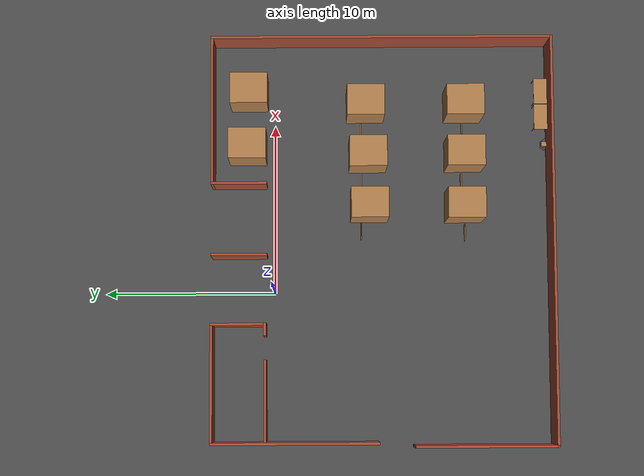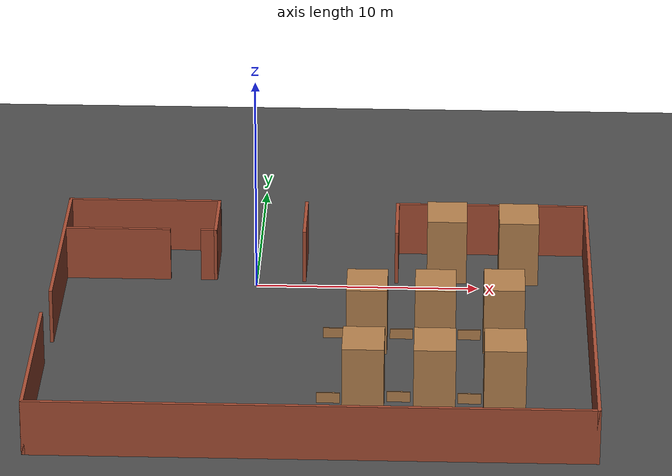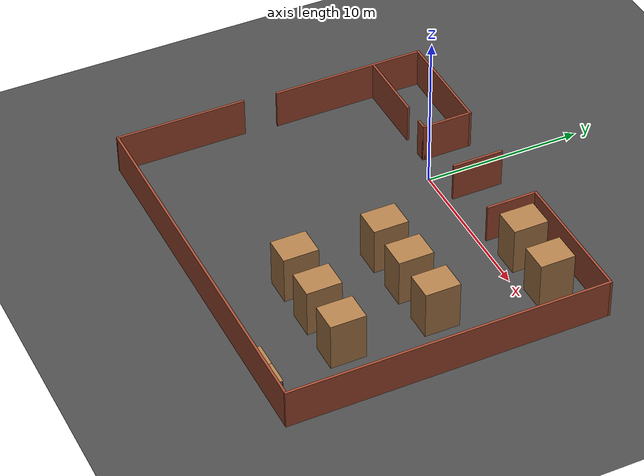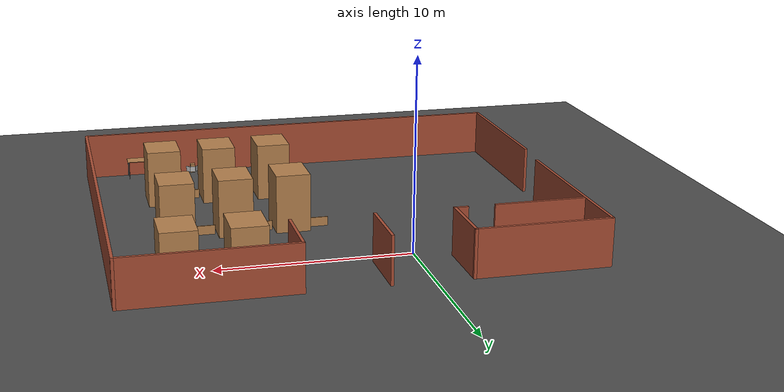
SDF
<sdf version="1.6">
 <world name="default">
  <model name="ground_plane">
   <static>1</static>
   <link name="link">
    <collision name="collision">
     <geometry><plane><normal>0 0 1</normal><size>100 100</size></plane></geometry>
     <surface><friction><ode><mu>100</mu><mu2>50</mu2></ode></friction></surface>
    </collision>
    <visual name="visual">
     <cast_shadows>0</cast_shadows>
     <geometry><plane><normal>0 0 1</normal><size>100 100</size></plane></geometry>
     <material>
      <script><uri>file://media/materials/scripts/gazebo.material</uri><name>Gazebo/DarkGrey</name></script>
     </material>
    </visual>
   </link>
  </model>
  <model name="enviroment_1">
   <pose>2.98612 -6.2457 0 0 -0 0</pose>
   <link name="Wall_0">
    <collision name="Wall_0_Collision">
     <geometry><box><size>8.25 0.15 2.5</size></box></geometry>
     <pose>0 0 1.25 0 -0 0</pose>
    </collision>
    <visual name="Wall_0_Visual">
     <pose>0 0 1.25 0 -0 0</pose>
     <geometry><box><size>8.25 0.15 2.5</size></box></geometry>
     <material>
      <script><uri>file://media/materials/scripts/gazebo.material</uri><name>Gazebo/Bricks</name></script>
      <ambient>1 1 1 1</ambient>
     </material>
     <meta><layer>0</layer></meta>
    </visual>
    <pose>-11.925 -5.8997 0 0 -0 -1.5708</pose>
   </link>
   <link name="Wall_1">
    <collision name="Wall_1_Collision">
     <geometry><box><size>24 0.15 2.5</size></box></geometry>
     <pose>0 0 1.25 0 -0 0</pose>
    </collision>
    <visual name="Wall_1_Visual">
     <pose>0 0 1.25 0 -0 0</pose>
     <geometry><box><size>24 0.15 2.5</size></box></geometry>
     <material>
      <script><uri>file://media/materials/scripts/gazebo.material</uri><name>Gazebo/Bricks</name></script>
      <ambient>1 1 1 1</ambient>
     </material>
     <meta><layer>0</layer></meta>
    </visual>
    <pose>0 -9.9497 0 0 -0 0</pose>
   </link>
   <link name="Wall_11">
    <collision name="Wall_11_Collision">
     <geometry><box><size>3.25 0.15 2.5</size></box></geometry>
     <pose>0 0 1.25 0 -0 0</pose>
    </collision>
    <visual name="Wall_11_Visual">
     <pose>0 0 1.25 0 -0 0</pose>
     <geometry><box><size>3.25 0.15 2.5</size></box></geometry>
     <material>
      <script><uri>file://media/materials/scripts/gazebo.material</uri><name>Gazebo/Bricks</name></script>
      <ambient>1 1 1 1</ambient>
     </material>
     <meta><layer>0</layer></meta>
    </visual>
    <pose>-0.85303 8.33887 0 0 -0 1.5708</pose>
   </link>
   <link name="Wall_13">
    <collision name="Wall_13_Collision">
     <geometry><box><size>4.75 0.15 2.5</size></box></geometry>
     <pose>0 0 1.25 0 -0 0</pose>
    </collision>
    <visual name="Wall_13_Visual">
     <pose>0 0 1.25 0 -0 0</pose>
     <geometry><box><size>4.75 0.15 2.5</size></box></geometry>
     <material>
      <script><uri>file://media/materials/scripts/gazebo.material</uri><name>Gazebo/Bricks</name></script>
      <ambient>1 1 1 1</ambient>
     </material>
     <meta><layer>0</layer></meta>
    </visual>
    <pose>-9.29736 6.8497 0 0 -0 3.14159</pose>
   </link>
   <link name="Wall_2">
    <collision name="Wall_2_Collision">
     <geometry><box><size>20 0.15 2.5</size></box></geometry>
     <pose>0 0 1.25 0 -0 0</pose>
    </collision>
    <visual name="Wall_2_Visual">
     <pose>0 0 1.25 0 -0 0</pose>
     <geometry><box><size>20 0.15 2.5</size></box></geometry>
     <material>
      <script><uri>file://media/materials/scripts/gazebo.material</uri><name>Gazebo/Bricks</name></script>
      <ambient>1 1 1 1</ambient>
     </material>
     <meta><layer>0</layer></meta>
    </visual>
    <pose>11.925 -0.024702 0 0 -0 1.5708</pose>
   </link>
   <link name="Wall_3">
    <collision name="Wall_3_Collision">
     <geometry><box><size>8.75 0.15 2.5</size></box></geometry>
     <pose>0 0 1.25 0 -0 0</pose>
    </collision>
    <visual name="Wall_3_Visual">
     <pose>0 0 1.25 0 -0 0</pose>
     <geometry><box><size>8.75 0.15 2.5</size></box></geometry>
     <material>
      <script><uri>file://media/materials/scripts/gazebo.material</uri><name>Gazebo/Bricks</name></script>
      <ambient>1 1 1 1</ambient>
     </material>
     <meta><layer>0</layer></meta>
    </visual>
    <pose>7.625 9.9003 0 0 -0 3.14159</pose>
   </link>
   <link name="Wall_4">
    <collision name="Wall_4_Collision">
     <geometry><box><size>3.25 0.15 2.5</size></box></geometry>
     <pose>0 0 1.25 0 -0 0</pose>
    </collision>
    <visual name="Wall_4_Visual">
     <pose>0 0 1.25 0 -0 0</pose>
     <geometry><box><size>3.25 0.15 2.5</size></box></geometry>
     <material>
      <script><uri>file://media/materials/scripts/gazebo.material</uri><name>Gazebo/Bricks</name></script>
      <ambient>1 1 1 1</ambient>
     </material>
     <meta><layer>0</layer></meta>
    </visual>
    <pose>3.325 8.3503 0 0 -0 -1.5708</pose>
   </link>
   <link name="Wall_6">
    <collision name="Wall_6_Collision">
     <geometry><box><size>0.75 0.15 2.5</size></box></geometry>
     <pose>0 0 1.25 0 -0 0</pose>
    </collision>
    <visual name="Wall_6_Visual">
     <pose>0 0 1.25 0 -0 0</pose>
     <geometry><box><size>0.75 0.15 2.5</size></box></geometry>
     <material>
      <script><uri>file://media/materials/scripts/gazebo.material</uri><name>Gazebo/Bricks</name></script>
      <ambient>1 1 1 1</ambient>
     </material>
     <meta><layer>0</layer></meta>
    </visual>
    <pose>-5.17649 6.8497 0 0 -0 0</pose>
   </link>
   <link name="Wall_7">
    <collision name="Wall_7_Collision">
     <geometry><box><size>3.25 0.15 2.5</size></box></geometry>
     <pose>0 0 1.25 0 -0 0</pose>
    </collision>
    <visual name="Wall_7_Visual">
     <pose>0 0 1.25 0 -0 0</pose>
     <geometry><box><size>3.25 0.15 2.5</size></box></geometry>
     <material>
      <script><uri>file://media/materials/scripts/gazebo.material</uri><name>Gazebo/Bricks</name></script>
      <ambient>1 1 1 1</ambient>
     </material>
     <meta><layer>0</layer></meta>
    </visual>
    <pose>-4.87649 8.3997 0 0 -0 1.5708</pose>
   </link>
   <link name="Wall_8">
    <collision name="Wall_8_Collision">
     <geometry><box><size>7 0.15 2.5</size></box></geometry>
     <pose>0 0 1.25 0 -0 0</pose>
    </collision>
    <visual name="Wall_8_Visual">
     <pose>0 0 1.25 0 -0 0</pose>
     <geometry><box><size>7 0.15 2.5</size></box></geometry>
     <material>
      <script><uri>file://media/materials/scripts/gazebo.material</uri><name>Gazebo/Bricks</name></script>
      <ambient>1 1 1 1</ambient>
     </material>
     <meta><layer>0</layer></meta>
    </visual>
    <pose>-8.30149 9.9497 0 0 -0 3.14159</pose>
   </link>
   <link name="Wall_9">
    <collision name="Wall_9_Collision">
     <geometry><box><size>9.75 0.15 2.5</size></box></geometry>
     <pose>0 0 1.25 0 -0 0</pose>
    </collision>
    <visual name="Wall_9_Visual">
     <pose>0 0 1.25 0 -0 0</pose>
     <geometry><box><size>9.75 0.15 2.5</size></box></geometry>
     <material>
      <script><uri>file://media/materials/scripts/gazebo.material</uri><name>Gazebo/Bricks</name></script>
      <ambient>1 1 1 1</ambient>
     </material>
     <meta><layer>0</layer></meta>
    </visual>
    <pose>-11.7265 5.1497 0 0 -0 -1.5708</pose>
   </link>
   <static>1</static>
  </model>
  <model name="unit_box_clone_1">
   <pose>5.11301 -5.51097 1.53205 1e-06 -0 0.000162</pose>
   <link name="link">
    <inertial>
     <mass>1</mass>
     <inertia>
      <ixx>0.166667</ixx>
      <ixy>0</ixy>
      <ixz>0</ixz>
      <iyy>0.166667</iyy>
      <iyz>0</iyz>
      <izz>0.166667</izz>
     </inertia>
    </inertial>
    <collision name="collision"><geometry><box><size>1.78607 2.17889 3.06409</size></box></geometry></collision>
    <visual name="visual">
     <geometry><box><size>1.78607 2.17889 3.06409</size></box></geometry>
     <material>
      <script><name>Gazebo/Wood</name><uri>file://media/materials/scripts/gazebo.material</uri></script>
     </material>
    </visual>
   </link>
  </model>
  <model name="unit_box_clone_2">
   <pose>8.1033 -5.43309 1.53204 2e-06 -0 0.000123</pose>
   <link name="link">
    <inertial>
     <mass>1</mass>
     <inertia>
      <ixx>0.166667</ixx>
      <ixy>0</ixy>
      <ixz>0</ixz>
      <iyy>0.166667</iyy>
      <iyz>0</iyz>
      <izz>0.166667</izz>
     </inertia>
    </inertial>
    <collision name="collision"><geometry><box><size>1.78607 2.17889 3.06409</size></box></geometry></collision>
    <visual name="visual">
     <geometry><box><size>1.78607 2.17889 3.06409</size></box></geometry>
     <material>
      <script><name>Gazebo/Wood</name><uri>file://media/materials/scripts/gazebo.material</uri></script>
     </material>
    </visual>
   </link>
  </model>
  <model name="unit_box_clone_3">
   <pose>11.1034 -5.30341 1.53205 -1e-06 -0 0.00014</pose>
   <link name="link">
    <inertial>
     <mass>1</mass>
     <inertia>
      <ixx>0.166667</ixx>
      <ixy>0</ixy>
      <ixz>0</ixz>
      <iyy>0.166667</iyy>
      <iyz>0</iyz>
      <izz>0.166667</izz>
     </inertia>
    </inertial>
    <collision name="collision"><geometry><box><size>1.78607 2.17889 3.06409</size></box></geometry></collision>
    <visual name="visual">
     <geometry><box><size>1.78607 2.17889 3.06409</size></box></geometry>
     <material>
      <script><name>Gazebo/Wood</name><uri>file://media/materials/scripts/gazebo.material</uri></script>
     </material>
    </visual>
   </link>
  </model>
  <model name="unit_box_clone_4">
   <pose>8.58374 1.61175 1.53205 1e-06 0 0.000115</pose>
   <link name="link">
    <inertial>
     <mass>1</mass>
     <inertia>
      <ixx>0.166667</ixx>
      <ixy>0</ixy>
      <ixz>0</ixz>
      <iyy>0.166667</iyy>
      <iyz>0</iyz>
      <izz>0.166667</izz>
     </inertia>
    </inertial>
    <collision name="collision"><geometry><box><size>1.78607 2.17889 3.06409</size></box></geometry></collision>
    <visual name="visual">
     <geometry><box><size>1.78607 2.17889 3.06409</size></box></geometry>
     <material>
      <script><name>Gazebo/Wood</name><uri>file://media/materials/scripts/gazebo.material</uri></script>
     </material>
    </visual>
   </link>
  </model>
  <model name="unit_box_clone_5">
   <pose>11.8267 1.51636 1.53205 -1e-06 0 0.000151</pose>
   <link name="link">
    <inertial>
     <mass>1</mass>
     <inertia>
      <ixx>0.166667</ixx>
      <ixy>0</ixy>
      <ixz>0</ixz>
      <iyy>0.166667</iyy>
      <iyz>0</iyz>
      <izz>0.166667</izz>
     </inertia>
    </inertial>
    <collision name="collision"><geometry><box><size>1.78607 2.17889 3.06409</size></box></geometry></collision>
    <visual name="visual">
     <geometry><box><size>1.78607 2.17889 3.06409</size></box></geometry>
     <material>
      <script><name>Gazebo/Wood</name><uri>file://media/materials/scripts/gazebo.material</uri></script>
     </material>
    </visual>
   </link>
  </model>
  <model name="unit_box_clone_9">
   <pose>5.07629 -11.1138 1.53204 2e-06 -0 8.1e-05</pose>
   <link name="link">
    <inertial>
     <mass>1</mass>
     <inertia>
      <ixx>0.166667</ixx>
      <ixy>0</ixy>
      <ixz>0</ixz>
      <iyy>0.166667</iyy>
      <iyz>0</iyz>
      <izz>0.166667</izz>
     </inertia>
    </inertial>
    <collision name="collision"><geometry><box><size>1.78607 2.17889 3.06409</size></box></geometry></collision>
    <visual name="visual">
     <geometry><box><size>1.78607 2.17889 3.06409</size></box></geometry>
     <material>
      <script><name>Gazebo/Wood</name><uri>file://media/materials/scripts/gazebo.material</uri></script>
     </material>
    </visual>
   </link>
  </model>
  <model name="unit_box_clone_10">
   <pose>8.1123 -11.1173 1.53204 2e-06 -0 0.000136</pose>
   <link name="link">
    <inertial>
     <mass>1</mass>
     <inertia>
      <ixx>0.166667</ixx>
      <ixy>0</ixy>
      <ixz>0</ixz>
      <iyy>0.166667</iyy>
      <iyz>0</iyz>
      <izz>0.166667</izz>
     </inertia>
    </inertial>
    <collision name="collision"><geometry><box><size>1.78607 2.17889 3.06409</size></box></geometry></collision>
    <visual name="visual">
     <geometry><box><size>1.78607 2.17889 3.06409</size></box></geometry>
     <material>
      <script><name>Gazebo/Wood</name><uri>file://media/materials/scripts/gazebo.material</uri></script>
     </material>
    </visual>
   </link>
  </model>
  <model name="unit_box_clone_11">
   <pose>11.0953 -11.093 1.53205 -1e-06 0 0.000112</pose>
   <link name="link">
    <inertial>
     <mass>1</mass>
     <inertia>
      <ixx>0.166667</ixx>
      <ixy>0</ixy>
      <ixz>0</ixz>
      <iyy>0.166667</iyy>
      <iyz>0</iyz>
      <izz>0.166667</izz>
     </inertia>
    </inertial>
    <collision name="collision"><geometry><box><size>1.78607 2.17889 3.06409</size></box></geometry></collision>
    <visual name="visual">
     <geometry><box><size>1.78607 2.17889 3.06409</size></box></geometry>
     <material>
      <script><name>Gazebo/Wood</name><uri>file://media/materials/scripts/gazebo.material</uri></script>
     </material>
    </visual>
   </link>
  </model>
  <model name="table">
   <static>1</static>
   <link name="link">
    <collision name="surface">
     <pose>0 0 1 0 -0 0</pose>
     <geometry><box><size>1.5 0.8 0.03</size></box></geometry>
     <surface><friction><ode><mu>0.6</mu><mu2>0.6</mu2></ode></friction></surface>
    </collision>
    <visual name="visual1">
     <pose>0 0 1 0 -0 0</pose>
     <geometry><box><size>1.5 0.8 0.03</size></box></geometry>
     <material>
      <script><uri>file://media/materials/scripts/gazebo.material</uri><name>Gazebo/Wood</name></script>
     </material>
    </visual>
    <collision name="front_left_leg">
     <pose>0.68 0.38 0.5 0 -0 0</pose>
     <geometry><cylinder><radius>0.02</radius><length>1</length></cylinder></geometry>
    </collision>
    <visual name="front_left_leg">
     <pose>0.68 0.38 0.5 0 -0 0</pose>
     <geometry><cylinder><radius>0.02</radius><length>1</length></cylinder></geometry>
     <material>
      <script><uri>file://media/materials/scripts/gazebo.material</uri><name>Gazebo/Grey</name></script>
     </material>
    </visual>
    <collision name="front_right_leg">
     <pose>0.68 -0.38 0.5 0 -0 0</pose>
     <geometry><cylinder><radius>0.02</radius><length>1</length></cylinder></geometry>
    </collision>
    <visual name="front_right_leg">
     <pose>0.68 -0.38 0.5 0 -0 0</pose>
     <geometry><cylinder><radius>0.02</radius><length>1</length></cylinder></geometry>
     <material>
      <script><uri>file://media/materials/scripts/gazebo.material</uri><name>Gazebo/Grey</name></script>
     </material>
    </visual>
    <collision name="back_right_leg">
     <pose>-0.68 -0.38 0.5 0 -0 0</pose>
     <geometry><cylinder><radius>0.02</radius><length>1</length></cylinder></geometry>
    </collision>
    <visual name="back_right_leg">
     <pose>-0.68 -0.38 0.5 0 -0 0</pose>
     <geometry><cylinder><radius>0.02</radius><length>1</length></cylinder></geometry>
     <material>
      <script><uri>file://media/materials/scripts/gazebo.material</uri><name>Gazebo/Grey</name></script>
     </material>
    </visual>
    <collision name="back_left_leg">
     <pose>-0.68 0.38 0.5 0 -0 0</pose>
     <geometry><cylinder><radius>0.02</radius><length>1</length></cylinder></geometry>
    </collision>
    <visual name="back_left_leg">
     <pose>-0.68 0.38 0.5 0 -0 0</pose>
     <geometry><cylinder><radius>0.02</radius><length>1</length></cylinder></geometry>
     <material>
      <script><uri>file://media/materials/scripts/gazebo.material</uri><name>Gazebo/Grey</name></script>
     </material>
    </visual>
   </link>
   <pose>10.3967 -15.7211 0 0 -0 0</pose>
  </model>
  <model name="table_0">
   <static>1</static>
   <link name="link">
    <collision name="surface">
     <pose>0 0 1 0 -0 0</pose>
     <geometry><box><size>1.5 0.8 0.03</size></box></geometry>
     <surface><friction><ode><mu>0.6</mu><mu2>0.6</mu2></ode></friction></surface>
    </collision>
    <visual name="visual1">
     <pose>0 0 1 0 -0 0</pose>
     <geometry><box><size>1.5 0.8 0.03</size></box></geometry>
     <material>
      <script><uri>file://media/materials/scripts/gazebo.material</uri><name>Gazebo/Wood</name></script>
     </material>
    </visual>
    <collision name="front_left_leg">
     <pose>0.68 0.38 0.5 0 -0 0</pose>
     <geometry><cylinder><radius>0.02</radius><length>1</length></cylinder></geometry>
    </collision>
    <visual name="front_left_leg">
     <pose>0.68 0.38 0.5 0 -0 0</pose>
     <geometry><cylinder><radius>0.02</radius><length>1</length></cylinder></geometry>
     <material>
      <script><uri>file://media/materials/scripts/gazebo.material</uri><name>Gazebo/Grey</name></script>
     </material>
    </visual>
    <collision name="front_right_leg">
     <pose>0.68 -0.38 0.5 0 -0 0</pose>
     <geometry><cylinder><radius>0.02</radius><length>1</length></cylinder></geometry>
    </collision>
    <visual name="front_right_leg">
     <pose>0.68 -0.38 0.5 0 -0 0</pose>
     <geometry><cylinder><radius>0.02</radius><length>1</length></cylinder></geometry>
     <material>
      <script><uri>file://media/materials/scripts/gazebo.material</uri><name>Gazebo/Grey</name></script>
     </material>
    </visual>
    <collision name="back_right_leg">
     <pose>-0.68 -0.38 0.5 0 -0 0</pose>
     <geometry><cylinder><radius>0.02</radius><length>1</length></cylinder></geometry>
    </collision>
    <visual name="back_right_leg">
     <pose>-0.68 -0.38 0.5 0 -0 0</pose>
     <geometry><cylinder><radius>0.02</radius><length>1</length></cylinder></geometry>
     <material>
      <script><uri>file://media/materials/scripts/gazebo.material</uri><name>Gazebo/Grey</name></script>
     </material>
    </visual>
    <collision name="back_left_leg">
     <pose>-0.68 0.38 0.5 0 -0 0</pose>
     <geometry><cylinder><radius>0.02</radius><length>1</length></cylinder></geometry>
    </collision>
    <visual name="back_left_leg">
     <pose>-0.68 0.38 0.5 0 -0 0</pose>
     <geometry><cylinder><radius>0.02</radius><length>1</length></cylinder></geometry>
     <material>
      <script><uri>file://media/materials/scripts/gazebo.material</uri><name>Gazebo/Grey</name></script>
     </material>
    </visual>
   </link>
   <pose>11.9134 -15.7244 0 0 -0 0</pose>
  </model>
  <model name="Support_box_wood_clone_clone">
   <link name="link">
    <inertial>
     <mass>0.0406949</mass>
     <inertia>
      <ixx>0.00114102</ixx>
      <ixy>0</ixy>
      <ixz>0</ixz>
      <iyy>0.00102768</iyy>
      <iyz>0</iyz>
      <izz>0.000581951</izz>
     </inertia>
    </inertial>
    <pose>0.062754 0.860403 -0.243846 0 -0 0</pose>
    <visual name="visual">
     <geometry><box><size>0.252854 0.320175 0.483682</size></box></geometry>
     <material>
      <script><name>Gazebo/Wood</name><uri>file://media/materials/scripts/gazebo.material</uri></script>
      <shader type="vertex"><normal_map>__default__</normal_map></shader>
      <ambient>0.3 0.3 0.3 1</ambient>
      <diffuse>0.7 0.7 0.7 1</diffuse>
      <specular>0.01 0.01 0.01 1</specular>
      <emissive>0 0 0 1</emissive>
     </material>
    </visual>
    <visual name="ModelPreview_4::link::visual_1">
     <geometry><box><size>0.252854 0.320175 0.483682</size></box></geometry>
     <material>
      <script><name>Gazebo/Wood</name><uri>file://media/materials/scripts/gazebo.material</uri></script>
      <shader type="vertex"><normal_map>__default__</normal_map></shader>
      <ambient>0.3 0.3 0.3 1</ambient>
      <diffuse>0.7 0.7 0.7 1</diffuse>
      <specular>0.01 0.01 0.01 1</specular>
      <emissive>0 0 0 1</emissive>
     </material>
    </visual>
    <collision name="collision">
     <geometry><box><size>0.262854 0.320175 0.483683</size></box></geometry>
     <surface>
      <friction>
       <ode><mu>1</mu><mu2>1</mu2><fdir1>0 0 0</fdir1><slip1>0</slip1><slip2>0</slip2></ode>
       <torsional>
        <coefficient>1</coefficient>
        <patch_radius>0</patch_radius>
        <surface_radius>0</surface_radius>
        <use_patch_radius>1</use_patch_radius>
        <ode><slip>0</slip></ode>
       </torsional>
      </friction>
      <bounce><restitution_coefficient>0</restitution_coefficient><threshold>1e+06</threshold></bounce>
      <contact>
       <collide_without_contact>0</collide_without_contact>
       <collide_without_contact_bitmask>1</collide_without_contact_bitmask>
       <collide_bitmask>1</collide_bitmask>
       <ode>
        <soft_cfm>0</soft_cfm>
        <soft_erp>0.2</soft_erp>
        <kp>1e+13</kp>
        <kd>1</kd>
        <max_vel>0.01</max_vel>
        <min_depth>0</min_depth>
       </ode>
       <bullet>
        <split_impulse>1</split_impulse>
        <split_impulse_penetration_threshold>-0.01</split_impulse_penetration_threshold>
        <soft_cfm>0</soft_cfm>
        <soft_erp>0.2</soft_erp>
        <kp>1e+13</kp>
        <kd>1</kd>
       </bullet>
      </contact>
     </surface>
    </collision>
   </link>
   <static>0</static>
   <pose>8.77795 -16.8207 0.485673 1.4e-05 -0 0.000104</pose>
  </model>
  <model name="Aruco tag102">
   <static>1</static>
   <link name="robot_link">
    <visual name="body_visual">
     <geometry><box><size>0.3 0.3 0.02</size></box></geometry>
     <material>
      <script><uri>model://tag_102/materials/scripts/tag.material</uri><name>aruco_tag_102</name></script>
     </material>
    </visual>
   </link>
   <pose>8.84643 -15.7937 0.2 1.57 -0 0</pose>
  </model>
  <model name="Aruco tag102_clone">
   <static>1</static>
   <link name="robot_link">
    <visual name="body_visual">
     <geometry><box><size>0.3 0.3 0.02</size></box></geometry>
     <material>
      <script><uri>model://tag_102/materials/scripts/tag.material</uri><name>aruco_tag_102</name></script>
     </material>
    </visual>
   </link>
   <pose>8.59529 -15.9151 0.2 1.57 -0 0.909999</pose>
  </model>
  <model name="Aruco tag102_clone_clone">
   <static>1</static>
   <link name="robot_link">
    <visual name="body_visual">
     <geometry><box><size>0.3 0.3 0.02</size></box></geometry>
     <material>
      <script><uri>model://tag_102/materials/scripts/tag.material</uri><name>aruco_tag_102</name></script>
     </material>
    </visual>
   </link>
   <pose>9.09641 -15.916 0.2 1.57 -0 -0.909999</pose>
  </model>
  <model name="fence">
   <link name="link">
    <inertial>
     <mass>0.0236206</mass>
     <inertia>
      <ixx>0.00046005</ixx>
      <ixy>0</ixy>
      <ixz>0</ixz>
      <iyy>0.00242368</iyy>
      <iyz>0</iyz>
      <izz>0.00197313</izz>
     </inertia>
    </inertial>
    <pose>0.164119 -0.397459 0.001761 0 -0 0</pose>
    <visual name="visual">
     <geometry><box><size>1 0.049108 0.480943</size></box></geometry>
     <material>
      <script><name>Gazebo/Wood</name><uri>file://media/materials/scripts/gazebo.material</uri></script>
      <shader type="pixel"><normal_map>__default__</normal_map></shader>
      <ambient>1 1 1 1</ambient>
      <diffuse>1 1 1 1</diffuse>
      <specular>0.2 0.2 0.2 1</specular>
      <emissive>0 0 0 1</emissive>
     </material>
    </visual>
    <collision name="collision">
     <geometry><box><size>1 0.049108 0.480943</size></box></geometry>
     <surface>
      <friction>
       <ode><mu>1</mu><mu2>1</mu2><fdir1>0 0 0</fdir1><slip1>0</slip1><slip2>0</slip2></ode>
       <torsional>
        <coefficient>1</coefficient>
        <patch_radius>0</patch_radius>
        <surface_radius>0</surface_radius>
        <use_patch_radius>1</use_patch_radius>
        <ode><slip>0</slip></ode>
       </torsional>
      </friction>
      <bounce><restitution_coefficient>0</restitution_coefficient><threshold>1e+06</threshold></bounce>
      <contact>
       <collide_without_contact>0</collide_without_contact>
       <collide_without_contact_bitmask>1</collide_without_contact_bitmask>
       <collide_bitmask>1</collide_bitmask>
       <ode>
        <soft_cfm>0</soft_cfm>
        <soft_erp>0.2</soft_erp>
        <kp>1e+13</kp>
        <kd>1</kd>
        <max_vel>0.01</max_vel>
        <min_depth>0</min_depth>
       </ode>
       <bullet>
        <split_impulse>1</split_impulse>
        <split_impulse_penetration_threshold>-0.01</split_impulse_penetration_threshold>
        <soft_cfm>0</soft_cfm>
        <soft_erp>0.2</soft_erp>
        <kp>1e+13</kp>
        <kd>1</kd>
       </bullet>
      </contact>
     </surface>
    </collision>
   </link>
   <static>0</static>
   <pose>9.44598 -10.6972 0.238705 1e-06 -9e-06 0.004586</pose>
  </model>
  <model name="fence_clone">
   <link name="link">
    <inertial>
     <mass>0.0236206</mass>
     <inertia>
      <ixx>0.00046005</ixx>
      <ixy>0</ixy>
      <ixz>0</ixz>
      <iyy>0.00242368</iyy>
      <iyz>0</iyz>
      <izz>0.00197313</izz>
     </inertia>
    </inertial>
    <pose>0.164119 -0.397459 0.001761 0 -0 0</pose>
    <visual name="visual">
     <geometry><box><size>1 0.049108 0.480943</size></box></geometry>
     <material>
      <script><name>Gazebo/Wood</name><uri>file://media/materials/scripts/gazebo.material</uri></script>
      <shader type="pixel"><normal_map>__default__</normal_map></shader>
      <ambient>1 1 1 1</ambient>
      <diffuse>1 1 1 1</diffuse>
      <specular>0.2 0.2 0.2 1</specular>
      <emissive>0 0 0 1</emissive>
     </material>
    </visual>
    <collision name="collision">
     <geometry><box><size>1 0.049108 0.480943</size></box></geometry>
     <surface>
      <friction>
       <ode><mu>1</mu><mu2>1</mu2><fdir1>0 0 0</fdir1><slip1>0</slip1><slip2>0</slip2></ode>
       <torsional>
        <coefficient>1</coefficient>
        <patch_radius>0</patch_radius>
        <surface_radius>0</surface_radius>
        <use_patch_radius>1</use_patch_radius>
        <ode><slip>0</slip></ode>
       </torsional>
      </friction>
      <bounce><restitution_coefficient>0</restitution_coefficient><threshold>1e+06</threshold></bounce>
      <contact>
       <collide_without_contact>0</collide_without_contact>
       <collide_without_contact_bitmask>1</collide_without_contact_bitmask>
       <collide_bitmask>1</collide_bitmask>
       <ode>
        <soft_cfm>0</soft_cfm>
        <soft_erp>0.2</soft_erp>
        <kp>1e+13</kp>
        <kd>1</kd>
        <max_vel>0.01</max_vel>
        <min_depth>0</min_depth>
       </ode>
       <bullet>
        <split_impulse>1</split_impulse>
        <split_impulse_penetration_threshold>-0.01</split_impulse_penetration_threshold>
        <soft_cfm>0</soft_cfm>
        <soft_erp>0.2</soft_erp>
        <kp>1e+13</kp>
        <kd>1</kd>
       </bullet>
      </contact>
     </surface>
    </collision>
   </link>
   <static>0</static>
   <pose>6.4229 -10.6127 0.238704 -1e-06 -9e-06 -0.003075</pose>
  </model>
  <model name="fence_clone_0">
   <link name="link">
    <inertial>
     <mass>0.0236206</mass>
     <inertia>
      <ixx>0.00046005</ixx>
      <ixy>0</ixy>
      <ixz>0</ixz>
      <iyy>0.00242368</iyy>
      <iyz>0</iyz>
      <izz>0.00197313</izz>
     </inertia>
    </inertial>
    <pose>0.164119 -0.397459 0.001761 0 -0 0</pose>
    <visual name="visual">
     <geometry><box><size>1 0.049108 0.480943</size></box></geometry>
     <material>
      <script><name>Gazebo/Wood</name><uri>file://media/materials/scripts/gazebo.material</uri></script>
      <shader type="pixel"><normal_map>__default__</normal_map></shader>
      <ambient>1 1 1 1</ambient>
      <diffuse>1 1 1 1</diffuse>
      <specular>0.2 0.2 0.2 1</specular>
      <emissive>0 0 0 1</emissive>
     </material>
    </visual>
    <collision name="collision">
     <geometry><box><size>1 0.049108 0.480943</size></box></geometry>
     <surface>
      <friction>
       <ode><mu>1</mu><mu2>1</mu2><fdir1>0 0 0</fdir1><slip1>0</slip1><slip2>0</slip2></ode>
       <torsional>
        <coefficient>1</coefficient>
        <patch_radius>0</patch_radius>
        <surface_radius>0</surface_radius>
        <use_patch_radius>1</use_patch_radius>
        <ode><slip>0</slip></ode>
       </torsional>
      </friction>
      <bounce><restitution_coefficient>0</restitution_coefficient><threshold>1e+06</threshold></bounce>
      <contact>
       <collide_without_contact>0</collide_without_contact>
       <collide_without_contact_bitmask>1</collide_without_contact_bitmask>
       <collide_bitmask>1</collide_bitmask>
       <ode>
        <soft_cfm>0</soft_cfm>
        <soft_erp>0.2</soft_erp>
        <kp>1e+13</kp>
        <kd>1</kd>
        <max_vel>0.01</max_vel>
        <min_depth>0</min_depth>
       </ode>
       <bullet>
        <split_impulse>1</split_impulse>
        <split_impulse_penetration_threshold>-0.01</split_impulse_penetration_threshold>
        <soft_cfm>0</soft_cfm>
        <soft_erp>0.2</soft_erp>
        <kp>1e+13</kp>
        <kd>1</kd>
       </bullet>
      </contact>
     </surface>
    </collision>
   </link>
   <static>0</static>
   <pose>3.40826 -10.8072 0.238705 1e-06 -9e-06 0.004582</pose>
  </model>
  <model name="fence_clone_5">
   <link name="link">
    <inertial>
     <mass>0.0236206</mass>
     <inertia>
      <ixx>0.00046005</ixx>
      <ixy>0</ixy>
      <ixz>0</ixz>
      <iyy>0.00242368</iyy>
      <iyz>0</iyz>
      <izz>0.00197313</izz>
     </inertia>
    </inertial>
    <pose>0.164119 -0.397459 0.001761 0 -0 0</pose>
    <visual name="visual">
     <geometry><box><size>1 0.049108 0.480943</size></box></geometry>
     <material>
      <script><name>Gazebo/Wood</name><uri>file://media/materials/scripts/gazebo.material</uri></script>
      <shader type="pixel"><normal_map>__default__</normal_map></shader>
      <ambient>1 1 1 1</ambient>
      <diffuse>1 1 1 1</diffuse>
      <specular>0.2 0.2 0.2 1</specular>
      <emissive>0 0 0 1</emissive>
     </material>
    </visual>
    <collision name="collision">
     <geometry><box><size>1 0.049108 0.480943</size></box></geometry>
     <surface>
      <friction>
       <ode><mu>1</mu><mu2>1</mu2><fdir1>0 0 0</fdir1><slip1>0</slip1><slip2>0</slip2></ode>
       <torsional>
        <coefficient>1</coefficient>
        <patch_radius>0</patch_radius>
        <surface_radius>0</surface_radius>
        <use_patch_radius>1</use_patch_radius>
        <ode><slip>0</slip></ode>
       </torsional>
      </friction>
      <bounce><restitution_coefficient>0</restitution_coefficient><threshold>1e+06</threshold></bounce>
      <contact>
       <collide_without_contact>0</collide_without_contact>
       <collide_without_contact_bitmask>1</collide_without_contact_bitmask>
       <collide_bitmask>1</collide_bitmask>
       <ode>
        <soft_cfm>0</soft_cfm>
        <soft_erp>0.2</soft_erp>
        <kp>1e+13</kp>
        <kd>1</kd>
        <max_vel>0.01</max_vel>
        <min_depth>0</min_depth>
       </ode>
       <bullet>
        <split_impulse>1</split_impulse>
        <split_impulse_penetration_threshold>-0.01</split_impulse_penetration_threshold>
        <soft_cfm>0</soft_cfm>
        <soft_erp>0.2</soft_erp>
        <kp>1e+13</kp>
        <kd>1</kd>
       </bullet>
      </contact>
     </surface>
    </collision>
   </link>
   <static>0</static>
   <pose>3.50684 -4.67245 0.238705 1e-06 -9e-06 0.00435</pose>
  </model>
  <model name="fence_clone_6">
   <link name="link">
    <inertial>
     <mass>0.0236206</mass>
     <inertia>
      <ixx>0.00046005</ixx>
      <ixy>0</ixy>
      <ixz>0</ixz>
      <iyy>0.00242368</iyy>
      <iyz>0</iyz>
      <izz>0.00197313</izz>
     </inertia>
    </inertial>
    <pose>0.164119 -0.397459 0.001761 0 -0 0</pose>
    <visual name="visual">
     <geometry><box><size>1 0.049108 0.480943</size></box></geometry>
     <material>
      <script><name>Gazebo/Wood</name><uri>file://media/materials/scripts/gazebo.material</uri></script>
      <shader type="pixel"><normal_map>__default__</normal_map></shader>
      <ambient>1 1 1 1</ambient>
      <diffuse>1 1 1 1</diffuse>
      <specular>0.2 0.2 0.2 1</specular>
      <emissive>0 0 0 1</emissive>
     </material>
    </visual>
    <collision name="collision">
     <geometry><box><size>1 0.049108 0.480943</size></box></geometry>
     <surface>
      <friction>
       <ode><mu>1</mu><mu2>1</mu2><fdir1>0 0 0</fdir1><slip1>0</slip1><slip2>0</slip2></ode>
       <torsional>
        <coefficient>1</coefficient>
        <patch_radius>0</patch_radius>
        <surface_radius>0</surface_radius>
        <use_patch_radius>1</use_patch_radius>
        <ode><slip>0</slip></ode>
       </torsional>
      </friction>
      <bounce><restitution_coefficient>0</restitution_coefficient><threshold>1e+06</threshold></bounce>
      <contact>
       <collide_without_contact>0</collide_without_contact>
       <collide_without_contact_bitmask>1</collide_without_contact_bitmask>
       <collide_bitmask>1</collide_bitmask>
       <ode>
        <soft_cfm>0</soft_cfm>
        <soft_erp>0.2</soft_erp>
        <kp>1e+13</kp>
        <kd>1</kd>
        <max_vel>0.01</max_vel>
        <min_depth>0</min_depth>
       </ode>
       <bullet>
        <split_impulse>1</split_impulse>
        <split_impulse_penetration_threshold>-0.01</split_impulse_penetration_threshold>
        <soft_cfm>0</soft_cfm>
        <soft_erp>0.2</soft_erp>
        <kp>1e+13</kp>
        <kd>1</kd>
       </bullet>
      </contact>
     </surface>
    </collision>
   </link>
   <static>0</static>
   <pose>6.45155 -4.6812 0.238704 -1e-06 -9e-06 0.002497</pose>
  </model>
  <model name="fence_clone_7">
   <link name="link">
    <inertial>
     <mass>0.0236206</mass>
     <inertia>
      <ixx>0.00046005</ixx>
      <ixy>0</ixy>
      <ixz>0</ixz>
      <iyy>0.00242368</iyy>
      <iyz>0</iyz>
      <izz>0.00197313</izz>
     </inertia>
    </inertial>
    <pose>0.164119 -0.397459 0.001761 0 -0 0</pose>
    <visual name="visual">
     <geometry><box><size>1 0.049108 0.480943</size></box></geometry>
     <material>
      <script><name>Gazebo/Wood</name><uri>file://media/materials/scripts/gazebo.material</uri></script>
      <shader type="pixel"><normal_map>__default__</normal_map></shader>
      <ambient>1 1 1 1</ambient>
      <diffuse>1 1 1 1</diffuse>
      <specular>0.2 0.2 0.2 1</specular>
      <emissive>0 0 0 1</emissive>
     </material>
    </visual>
    <collision name="collision">
     <geometry><box><size>1 0.049108 0.480943</size></box></geometry>
     <surface>
      <friction>
       <ode><mu>1</mu><mu2>1</mu2><fdir1>0 0 0</fdir1><slip1>0</slip1><slip2>0</slip2></ode>
       <torsional>
        <coefficient>1</coefficient>
        <patch_radius>0</patch_radius>
        <surface_radius>0</surface_radius>
        <use_patch_radius>1</use_patch_radius>
        <ode><slip>0</slip></ode>
       </torsional>
      </friction>
      <bounce><restitution_coefficient>0</restitution_coefficient><threshold>1e+06</threshold></bounce>
      <contact>
       <collide_without_contact>0</collide_without_contact>
       <collide_without_contact_bitmask>1</collide_without_contact_bitmask>
       <collide_bitmask>1</collide_bitmask>
       <ode>
        <soft_cfm>0</soft_cfm>
        <soft_erp>0.2</soft_erp>
        <kp>1e+13</kp>
        <kd>1</kd>
        <max_vel>0.01</max_vel>
        <min_depth>0</min_depth>
       </ode>
       <bullet>
        <split_impulse>1</split_impulse>
        <split_impulse_penetration_threshold>-0.01</split_impulse_penetration_threshold>
        <soft_cfm>0</soft_cfm>
        <soft_erp>0.2</soft_erp>
        <kp>1e+13</kp>
        <kd>1</kd>
       </bullet>
      </contact>
     </surface>
    </collision>
   </link>
   <static>0</static>
   <pose>9.43757 -4.67857 0.238704 1e-06 -1e-05 0.004358</pose>
  </model>
 </world>
</sdf>
